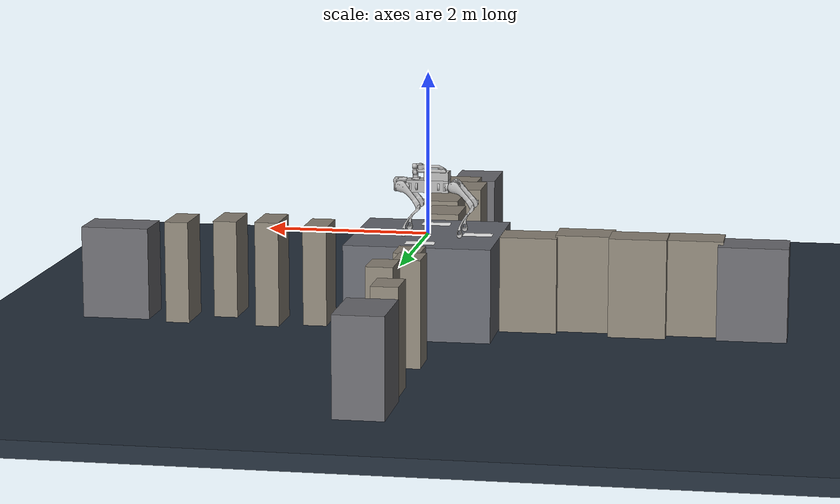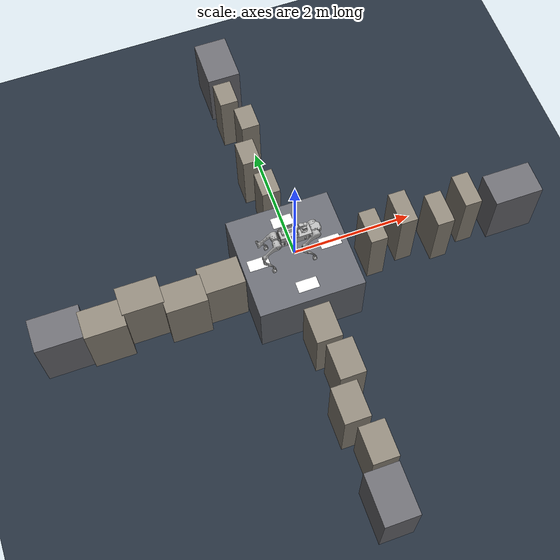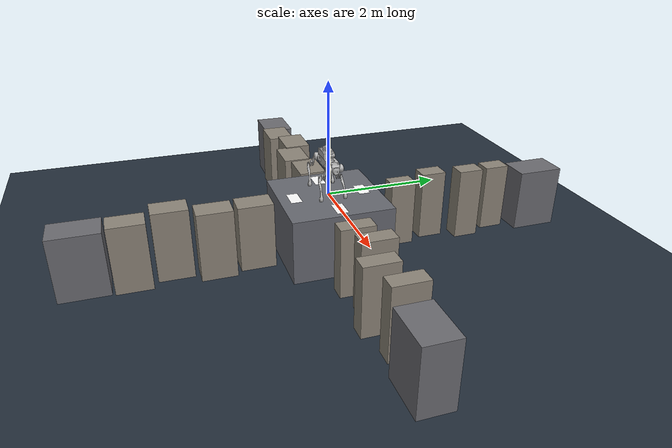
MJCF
<mujoco model="step_stone_cross_1_4_7_10">
  <include file="RM75.xml"/>
  <!-- Terrain: Cross Step Stone.
       The four branches approximate MGDP parkour levels 1 / 4 / 7 / 10
       using representative difficulties 0.1 / 0.4 / 0.7 / 0.9. -->
  <statistic center="0 0 0.12" extent="0.9" />
  <visual>
    <headlight diffuse="0.6 0.6 0.6" ambient="0.3 0.3 0.3" specular="0 0 0" />
    <rgba haze="0.15 0.25 0.35 1" />
    <global azimuth="-130" elevation="-20" />
  </visual>
  <asset>
    <texture type="skybox" builtin="gradient" rgb1="0.3 0.5 0.7" rgb2="0 0 0" width="512" height="3072" />
    <texture type="2d" name="groundplane" builtin="checker" mark="edge" rgb1="0.18 0.22 0.28" rgb2="0.10 0.14 0.18" markrgb="0.8 0.8 0.8" width="300" height="300" />
    <material name="groundplane" texture="groundplane" texuniform="true" texrepeat="5 5" reflectance="0.0" />
    <texture name="tex_label_1" type="2d" file="./imgs/label_1.png" />
    <material name="mat_label_1" texture="tex_label_1" specular="0" shininess="0" emission="1" texrepeat="1 1" rgba="1 1 1 1" />
    <texture name="tex_label_7" type="2d" file="./imgs/label_7.png" />
    <material name="mat_label_7" texture="tex_label_7" specular="0" shininess="0" emission="1" texrepeat="1 1" rgba="1 1 1 1" />
    <texture name="tex_label_10" type="2d" file="./imgs/label_10.png" />
    <material name="mat_label_10" texture="tex_label_10" specular="0" shininess="0" emission="1" texrepeat="1 1" rgba="1 1 1 1" />
    <texture name="tex_label_4" type="2d" file="./imgs/label_4.png" />
    <material name="mat_label_4" texture="tex_label_4" specular="0" shininess="0" emission="1" texrepeat="1 1" rgba="1 1 1 1" />
  </asset>
  <worldbody>
    <light pos="0 0 1.5" dir="0 0 -1" directional="true" />

    <geom name="pit_floor" pos="0 0 -1.25" size="20 20 0.10" type="box" material="groundplane" />
    <geom name="hub" pos="0 0 -0.60" type="box" size="0.90 0.90 0.60" rgba="0.40 0.41 0.44 1" />

    <!-- neg_x direction, level 1, difficulty=0.1, step_stone -->
    <geom name="neg_x_stone_1" pos="-1.27 0 -0.5864" type="box" size="0.35 0.245 0.6136" rgba="0.55 0.52 0.47 1" />
    <geom name="neg_x_stone_2" pos="-1.94 -0.12 -0.57552" type="box" size="0.35 0.245 0.62448" rgba="0.55 0.52 0.47 1" />
    <geom name="neg_x_stone_3" pos="-2.61 0.08 -0.566" type="box" size="0.35 0.245 0.634" rgba="0.55 0.52 0.47 1" />
    <geom name="neg_x_stone_4" pos="-3.28 -0.1 -0.5813" type="box" size="0.35 0.245 0.6187" rgba="0.55 0.52 0.47 1" />
    <geom name="neg_x_landing" pos="-3.995 0 -0.6" type="box" size="0.425 0.29 0.6" rgba="0.42 0.42 0.44 1" />
    <geom name="neg_x_label" pos="-0.62 0 0.002" type="box" size="0.18 0.10 0.0001" contype="0" conaffinity="0" group="1" material="mat_label_1" rgba="1 1 1 1" />

    <!-- pos_y direction, level 7, difficulty=0.7, step_stone -->
    <geom name="pos_y_stone_1" pos="0 1.3775 -0.5648" type="box" size="0.15925 0.2275 0.6352" rgba="0.55 0.52 0.47 1" />
    <geom name="pos_y_stone_2" pos="-0.12 2.0325 -0.53664" type="box" size="0.15925 0.2275 0.66336" rgba="0.55 0.52 0.47 1" />
    <geom name="pos_y_stone_3" pos="0.08 2.6875 -0.512" type="box" size="0.15925 0.2275 0.688" rgba="0.55 0.52 0.47 1" />
    <geom name="pos_y_stone_4" pos="-0.1 3.3425 -0.5516" type="box" size="0.15925 0.2275 0.6484" rgba="0.55 0.52 0.47 1" />
    <geom name="pos_y_landing" pos="0 4.165 -0.6" type="box" size="0.29 0.425 0.6" rgba="0.42 0.42 0.44 1" />
    <geom name="pos_y_label" pos="0 0.62 0.002" type="box" size="0.10 0.18 0.0001" quat="0.7071067811865476 0 0 0.7071067811865475" contype="0" conaffinity="0" group="1" material="mat_label_7" rgba="1 1 1 1" />

    <!-- pos_x direction, level 10, difficulty=0.9, step_stone -->
    <geom name="pos_x_stone_1" pos="1.3775 0 -0.5576" type="box" size="0.1475 0.30 0.6424" rgba="0.55 0.52 0.47 1" />
    <geom name="pos_x_stone_2" pos="1.9525 0.12 -0.52368" type="box" size="0.1475 0.30 0.67632" rgba="0.55 0.52 0.47 1" />
    <geom name="pos_x_stone_3" pos="2.5275 -0.08 -0.494" type="box" size="0.1475 0.3014 0.606" rgba="0.55 0.52 0.47 1" />
    <geom name="pos_x_stone_4" pos="3.1025 0.1 -0.5417" type="box" size="0.1475 0.30 0.6583" rgba="0.55 0.52 0.47 1" />
    <geom name="pos_x_landing" pos="3.925 0 -0.6" type="box" size="0.425 0.29 0.6" rgba="0.42 0.42 0.44 1" />
    <geom name="pos_x_label" pos="0.62 0 0.002" type="box" size="0.18 0.10 0.0001" contype="0" conaffinity="0" group="1" material="mat_label_10" rgba="1 1 1 1" />

    <!-- neg_y direction, level 4, difficulty=0.4, step_stone -->
    <geom name="neg_y_stone_1" pos="0 -1.34 -0.5756" type="box" size="0.217 0.31 0.6244" rgba="0.55 0.52 0.47 1" />
    <geom name="neg_y_stone_2" pos="0.12 -2.04 -0.55608" type="box" size="0.217 0.31 0.64392" rgba="0.55 0.52 0.47 1" />
    <geom name="neg_y_stone_3" pos="-0.08 -2.74 -0.539" type="box" size="0.217 0.31 0.661" rgba="0.55 0.52 0.47 1" />
    <geom name="neg_y_stone_4" pos="0.1 -3.44 -0.56645" type="box" size="0.217 0.31 0.63355" rgba="0.55 0.52 0.47 1" />
    <geom name="neg_y_landing" pos="0 -4.225 -0.6" type="box" size="0.29 0.425 0.6" rgba="0.42 0.42 0.44 1" />
    <geom name="neg_y_label" pos="0 -0.62 0.002" type="box" size="0.10 0.18 0.0001" quat="0.7071067811865476 0 0 -0.7071067811865475" contype="0" conaffinity="0" group="1" material="mat_label_4" rgba="1 1 1 1" />
  </worldbody>

  <keyframe>
    <key name="step_stone_start" qpos="0 0 0.53 1 0 0 0 0 0 0 0 0 0 0 0 0 0 0 0"/>
  </keyframe>
</mujoco>

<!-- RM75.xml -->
<mujoco model="RM75_locked_arm">
  <compiler angle="radian" meshdir="../../../RM75/meshes" convexhull="false" />
  <default>
    <joint damping="0.05" armature="0.02" frictionloss="0.02" />
    <geom condim="3" friction="0.9 0.02 0.01" />
    <default class="visual">
      <geom type="mesh" contype="0" conaffinity="0" group="2" />
    </default>
  </default>
  <asset>
    <material name="rm75_grey" rgba="0.70 0.70 0.70 1" />
    <material name="rm75_white" rgba="0.92 0.92 0.92 1" />
    <mesh name="base_link_mesh" file="base_link.STL" />
    <mesh name="FL_hip_mesh" file="FL_hip.STL" />
    <mesh name="FL_thigh_mesh" file="FL_thigh.STL" />
    <mesh name="FL_calf_mesh" file="FL_calf.STL" />
    <mesh name="FR_hip_mesh" file="FR_hip.STL" />
    <mesh name="FR_thigh_mesh" file="FR_thigh.STL" />
    <mesh name="FR_calf_mesh" file="FR_calf.STL" />
    <mesh name="RL_hip_mesh" file="RL_hip.STL" />
    <mesh name="RL_thigh_mesh" file="RL_thigh.STL" />
    <mesh name="RL_calf_mesh" file="RL_calf.STL" />
    <mesh name="RR_hip_mesh" file="RR_hip.STL" />
    <mesh name="RR_thigh_mesh" file="RR_thigh.STL" />
    <mesh name="RR_calf_mesh" file="RR_calf.STL" />
    <mesh name="base_arm_mesh" file="base_arm.STL" />
    <mesh name="link1_mesh" file="link1.STL" />
    <mesh name="link2_mesh" file="link2.STL" />
    <mesh name="link3_mesh" file="link3.STL" />
    <mesh name="link4_mesh" file="link4.STL" />
    <mesh name="link5_mesh" file="link5.STL" />
    <mesh name="link6_mesh" file="link6.STL" />
    <mesh name="frame_link_mesh" file="frame_link.STL" />
    <mesh name="head_link_mesh" file="head_link.STL" />
  </asset>
  <worldbody>
    <body name="base" pos="0 0 0.53">
      <freejoint name="root" />
      <inertial pos="-0.00021911 -8.577e-08 0.074571" mass="34.6" fullinertia="0.14102 0.56124 0.62227 -1.7646e-08 2.1243e-05 -1.5055e-07" />
      <geom name="base_link_visual" type="mesh" mesh="base_link_mesh" class="visual" material="rm75_grey" />
      <geom name="base_link_collision_0" pos="0 0 0.0695" quat="1 0 0 0" group="3" type="box" size="0.25 0.1 0.075" />
      <body name="FL_hip" pos="0.209 0.07 0.0705" quat="0.999550033749 0.0299955002025 0 0">
        <joint name="FL_hip_joint" axis="1 0 0" range="-0.93 0.81" />
        <inertial pos="0.11205 -0.016879 9.3139e-08" mass="2.9462" fullinertia="0.002834 0.0043473 0.0023086 -7.843e-06 -3.5056e-07 1.7625e-08" />
        <geom name="FL_hip_visual" type="mesh" mesh="FL_hip_mesh" class="visual" material="rm75_grey" />
        <geom name="FL_hip_collision_0" pos="0.12 -0.027 0" quat="0.707106781187 0.707106781187 0 0" group="3" type="cylinder" size="0.0535 0.0205" />
        <body name="FL_thigh" pos="0.12003 0.0485 0" quat="0.939372712847 0 0.342897807455 0">
          <joint name="FL_thigh_joint" axis="0 1 0" range="-1.64 3.99" />
          <inertial pos="-0.0059037 0.027545 -0.041279" mass="4.8086" fullinertia="0.03732 0.038716 0.0061113 0.00048305 -0.0031358 0.0034367" />
          <geom name="FL_thigh_visual" type="mesh" mesh="FL_thigh_mesh" class="visual" material="rm75_grey" />
          <geom name="FL_thigh_collision_0" pos="-0.018 0.075 -0.075" quat="0.605820156643 -0 0.795601620036 -0" group="3" type="box" size="0.0575 0.012 0.0225" />
          <geom name="FL_thigh_collision_1" pos="-0.03 0.075 -0.175" quat="0.707105482511 -0 0.707108079859 -0" group="3" type="box" size="0.085 0.012 0.019" />
          <geom name="FL_thigh_collision_2" pos="-3e-05 -0.001514 0" quat="0.707106781187 0.707106781187 0 0" group="3" type="cylinder" size="0.0535 0.0205" />
          <body name="FL_calf" pos="-0.00019314 0.065988 -0.35012" quat="0.82533561491 2.51705453774e-15 -0.564642473395 -1.66858366835e-15">
            <joint name="FL_calf_joint" axis="0 1 0" range="-1.62 0.77" />
            <inertial pos="0.022587 0.0094042 -0.20806" mass="0.5299" fullinertia="0.0066551 0.0068264 0.00033464 1.2646e-06 0.00078306 -9.4791e-06" />
            <geom name="FL_calf_visual" type="mesh" mesh="FL_calf_mesh" class="visual" material="rm75_grey" />
            <geom name="FL_calf_collision_0" pos="0.0082 0.0094 -0.04" quat="0.813791292233 0 0.581157235769 0" group="3" type="box" size="0.05 0.01225 0.009" />
            <geom name="FL_calf_collision_1" pos="0.0308 0.0094 -0.1025" quat="0.808469139581 0 0.588538571671 0" group="3" type="box" size="0.05 0.01225 0.009" />
            <geom name="FL_calf_collision_2" pos="0.0498 0.0094 -0.225" quat="0.70494551729 -0 0.709261459303 -0" group="3" type="box" size="0.075 0.01225 0.0075" />
            <geom name="FL_calf_collision_3" pos="0.0294 0.0094 -0.3125" quat="0.484416730419 0 0.874837374196 0" group="3" type="box" size="0.0325 0.014 0.0175" />
            <body name="FL_foot" pos="0 0 -0.35" quat="1 0 0 0">
              <inertial pos="0 0 0" mass="0.04" fullinertia="9.6e-06 9.6e-06 9.6e-06 0 0 0" />
              <geom name="FL_foot_collision_0" pos="0 0 0" quat="1 0 0 0" group="3" type="sphere" size="0.032" />
            </body>
          </body>
        </body>
      </body>
      <body name="FR_hip" pos="0.219 -0.07 0.0705" quat="0.999550033749 -0.0299955002025 -0 0">
        <joint name="FR_hip_joint" axis="1 0 0" range="-0.81 0.93" />
        <inertial pos="0.10205 0.016879 1.9176e-08" mass="2.9462" fullinertia="0.0028341 0.0043473 0.0023085 7.8432e-06 1.0483e-07 1.3798e-08" />
        <geom name="FR_hip_visual" type="mesh" mesh="FR_hip_mesh" class="visual" material="rm75_grey" />
        <geom name="FR_hip_collision_0" pos="0.11 0.027 0" quat="0.707106781187 0.707106781187 0 0" group="3" type="cylinder" size="0.0535 0.0205" />
        <body name="FR_thigh" pos="0.10979 -0.0485 -5.5285e-05" quat="0.939372712847 0 0.342897807455 0">
          <joint name="FR_thigh_joint" axis="0 1 0" range="-1.64 3.99" />
          <inertial pos="-0.0057859 -0.027545 -0.041242" mass="4.8081" fullinertia="0.037305 0.038702 0.0061115 -0.00048278 -0.0031376 -0.0034355" />
          <geom name="FR_thigh_visual" type="mesh" mesh="FR_thigh_mesh" class="visual" material="rm75_grey" />
          <geom name="FR_thigh_collision_0" pos="-0.018 -0.075 -0.075" quat="0.605820156643 -0 0.795601620036 -0" group="3" type="box" size="0.0575 0.012 0.0225" />
          <geom name="FR_thigh_collision_1" pos="-0.03 -0.075 -0.175" quat="0.707105482511 -0 0.707108079859 -0" group="3" type="box" size="0.085 0.012 0.019" />
          <geom name="FR_thigh_collision_2" pos="0.00021 0.001382 6e-05" quat="0.707106781187 0.707106781187 0 0" group="3" type="cylinder" size="0.0535 0.0205" />
          <body name="FR_calf" pos="-0.00034533 -0.065724 -0.34993" quat="0.82533561491 2.51705453774e-15 -0.564642473395 -1.66858366835e-15">
            <joint name="FR_calf_joint" axis="0 1 0" range="-1.62 0.77" />
            <inertial pos="0.026193 -0.0095278 -0.20763" mass="0.5299" fullinertia="0.0066258 0.0068264 0.00036386 -1.3857e-08 0.00089235 6.3149e-08" />
            <geom name="FR_calf_visual" type="mesh" mesh="FR_calf_mesh" class="visual" material="rm75_grey" />
            <geom name="FR_calf_collision_0" pos="0.0089 -0.0095 -0.04" quat="0.818787794874 0 0.57409628719 0" group="3" type="box" size="0.05 0.01225 0.009" />
            <geom name="FR_calf_collision_1" pos="0.0331 -0.0095 -0.1025" quat="0.811869045746 0 0.583839577761 0" group="3" type="box" size="0.05 0.01225 0.009" />
            <geom name="FR_calf_collision_2" pos="0.0539 -0.0095 -0.225" quat="0.709470322406 0 0.704735313167 0" group="3" type="box" size="0.075 0.01225 0.0075" />
            <geom name="FR_calf_collision_3" pos="0.0366 -0.0095 -0.3125" quat="0.5161042138 -0 0.85652579675 -0" group="3" type="box" size="0.0325 0.014 0.0175" />
            <body name="FR_foot" pos="0 0 -0.35" quat="1 0 0 0">
              <inertial pos="0 0 0" mass="0.04" fullinertia="9.6e-06 9.6e-06 9.6e-06 0 0 0" />
              <geom name="FR_foot_collision_0" pos="0 0 0" quat="1 0 0 0" group="3" type="sphere" size="0.032" />
            </body>
          </body>
        </body>
      </body>
      <body name="RL_hip" pos="-0.219 0.07 0.0705" quat="0.999550033749 0.0299955002025 0 0">
        <joint name="RL_hip_joint" axis="1 0 0" range="-0.93 0.81" />
        <inertial pos="-0.10105 -0.016879 -9.3139e-08" mass="2.9462" fullinertia="0.002834 0.0043473 0.0023086 7.843e-06 -3.5056e-07 -1.7625e-08" />
        <geom name="RL_hip_visual" type="mesh" mesh="RL_hip_mesh" class="visual" material="rm75_grey" />
        <geom name="RL_hip_collision_0" pos="-0.109 -0.027 0" quat="0.707106781187 0.707106781187 0 0" group="3" type="cylinder" size="0.0535 0.0205" />
        <body name="RL_thigh" pos="-0.10897 0.0475 0" quat="0.930507621912 0 0.366272529086 0">
          <joint name="RL_thigh_joint" axis="0 1 0" range="-1.69 3.94" />
          <inertial pos="-0.005904 0.027545 -0.041278" mass="4.8086" fullinertia="0.03732 0.038716 0.0061113 0.00048304 -0.0031358 0.0034368" />
          <geom name="RL_thigh_visual" type="mesh" mesh="RL_thigh_mesh" class="visual" material="rm75_grey" />
          <geom name="RL_thigh_collision_0" pos="-0.018 0.075 -0.075" quat="0.605820156643 -0 0.795601620036 -0" group="3" type="box" size="0.0575 0.012 0.0225" />
          <geom name="RL_thigh_collision_1" pos="-0.03 0.075 -0.175" quat="0.707105482511 -0 0.707108079859 -0" group="3" type="box" size="0.085 0.012 0.019" />
          <geom name="RL_thigh_collision_2" pos="-3e-05 -0.001514 0" quat="0.707106781187 0.707106781187 0 0" group="3" type="cylinder" size="0.0535 0.0205" />
          <body name="RL_calf" pos="-0.00019314 0.065988 -0.35012" quat="0.83232898352 2.53771464811e-15 -0.554281934752 -1.63699094958e-15">
            <joint name="RL_calf_joint" axis="0 1 0" range="-1.645 0.745" />
            <inertial pos="0.022587 0.0094042 -0.20806" mass="0.5299" fullinertia="0.0066551 0.0068264 0.00033464 1.2646e-06 0.00078306 -9.4791e-06" />
            <geom name="RL_calf_visual" type="mesh" mesh="RL_calf_mesh" class="visual" material="rm75_grey" />
            <geom name="RL_calf_collision_0" pos="0.0082 0.0094 -0.04" quat="0.813791292233 0 0.581157235769 0" group="3" type="box" size="0.05 0.01225 0.009" />
            <geom name="RL_calf_collision_1" pos="0.0308 0.0094 -0.1025" quat="0.808469139581 0 0.588538571671 0" group="3" type="box" size="0.05 0.01225 0.009" />
            <geom name="RL_calf_collision_2" pos="0.0498 0.0094 -0.225" quat="0.70494551729 -0 0.709261459303 -0" group="3" type="box" size="0.075 0.01225 0.0075" />
            <geom name="RL_calf_collision_3" pos="0.0294 0.0094 -0.3125" quat="0.484416730419 0 0.874837374196 0" group="3" type="box" size="0.0325 0.014 0.0175" />
            <body name="RL_foot" pos="0 0 -0.35" quat="1 0 0 0">
              <inertial pos="0 0 0" mass="0.04" fullinertia="9.6e-06 9.6e-06 9.6e-06 0 0 0" />
              <geom name="RL_foot_collision_0" pos="0 0 0" quat="1 0 0 0" group="3" type="sphere" size="0.032" />
            </body>
          </body>
        </body>
      </body>
      <body name="RR_hip" pos="-0.219 -0.07 0.0705" quat="0.999550033749 -0.0299955002025 -0 0">
        <joint name="RR_hip_joint" axis="1 0 0" range="-0.81 0.93" />
        <inertial pos="-0.10105 0.016879 9.3139e-08" mass="2.9462" fullinertia="0.002834 0.0043473 0.0023086 -7.843e-06 3.509e-07 -1.7625e-08" />
        <geom name="RR_hip_visual" type="mesh" mesh="RR_hip_mesh" class="visual" material="rm75_grey" />
        <geom name="RR_hip_collision_0" pos="-0.109 0.027 0" quat="0.707106781187 0.707106781187 0 0" group="3" type="cylinder" size="0.0535 0.0205" />
        <body name="RR_thigh" pos="-0.10921 -0.0475 -5.5285e-05" quat="0.930507621912 0 0.366272529086 0">
          <joint name="RR_thigh_joint" axis="0 1 0" range="-1.69 3.94" />
          <inertial pos="-0.0057859 -0.027545 -0.041242" mass="4.8081" fullinertia="0.037305 0.038702 0.0061115 -0.00048278 -0.0031376 -0.0034355" />
          <geom name="RR_thigh_visual" type="mesh" mesh="RR_thigh_mesh" class="visual" material="rm75_grey" />
          <geom name="RR_thigh_collision_0" pos="-0.018 -0.075 -0.075" quat="0.605820156643 -0 0.795601620036 -0" group="3" type="box" size="0.0575 0.012 0.0225" />
          <geom name="RR_thigh_collision_1" pos="-0.03 -0.075 -0.175" quat="0.707105482511 -0 0.707108079859 -0" group="3" type="box" size="0.085 0.012 0.019" />
          <geom name="RR_thigh_collision_2" pos="0.00021 0.001382 6e-05" quat="0.707106781187 0.707106781187 0 0" group="3" type="cylinder" size="0.0535 0.0205" />
          <body name="RR_calf" pos="-0.00034533 -0.065724 -0.34993" quat="0.83232898352 2.53771464811e-15 -0.554281934752 -1.63699094958e-15">
            <joint name="RR_calf_joint" axis="0 1 0" range="-1.645 0.745" />
            <inertial pos="0.026193 -0.0095278 -0.20763" mass="0.5299" fullinertia="0.0066258 0.0068264 0.00036386 -1.398e-08 0.00089236 6.2692e-08" />
            <geom name="RR_calf_visual" type="mesh" mesh="RR_calf_mesh" class="visual" material="rm75_grey" />
            <geom name="RR_calf_collision_0" pos="0.0089 -0.0095 -0.04" quat="0.818787794874 0 0.57409628719 0" group="3" type="box" size="0.05 0.01225 0.009" />
            <geom name="RR_calf_collision_1" pos="0.0331 -0.0095 -0.1025" quat="0.811869045746 0 0.583839577761 0" group="3" type="box" size="0.05 0.01225 0.009" />
            <geom name="RR_calf_collision_2" pos="0.0539 -0.0095 -0.225" quat="0.709470322406 0 0.704735313167 0" group="3" type="box" size="0.075 0.01225 0.0075" />
            <geom name="RR_calf_collision_3" pos="0.0366 -0.0095 -0.3125" quat="0.5161042138 -0 0.85652579675 -0" group="3" type="box" size="0.0325 0.014 0.0175" />
            <body name="RR_foot" pos="0 0 -0.35" quat="1 0 0 0">
              <inertial pos="0 0 0" mass="0.04" fullinertia="9.6e-06 9.6e-06 9.6e-06 0 0 0" />
              <geom name="RR_foot_collision_0" pos="0 0 0" quat="1 0 0 0" group="3" type="sphere" size="0.032" />
            </body>
          </body>
        </body>
      </body>
      <body name="base_arm" pos="0.16 0 0.147" quat="1 0 0 0">
        <inertial pos="-0.0057371 3.3089e-07 0.021574" mass="1.2829" fullinertia="0.0010361 0.0011971 0.0015394 6.5867e-09 -3.9093e-05 7.3288e-10" />
        <geom name="base_arm_visual" type="mesh" mesh="base_arm_mesh" class="visual" material="rm75_grey" />
        <geom name="base_arm_collision_0" pos="0 0 0.0255" quat="1 0 0 0" group="3" type="cylinder" size="0.0325 0.0255" />
        <body name="link1" pos="0 0 0.0585" quat="1 0 0 0">
          <inertial pos="-8.1037e-08 7.127e-08 0.022725" mass="1.8285" fullinertia="0.0043121 0.0010993 0.0041456 3.4622e-08 -3.2753e-09 2.5967e-09" />
          <geom name="link1_visual" type="mesh" mesh="link1_mesh" class="visual" material="rm75_grey" />
          <geom name="link1_collision_0" pos="0 0 0" quat="1 0 0 0" group="3" type="mesh" mesh="link1_mesh" />
          <body name="link2" pos="0 0 0.045" quat="1 0 0 0">
            <inertial pos="-0.11245 0.0027633 -2.7613e-06" mass="3.2348" fullinertia="0.0022244 0.04627 0.047171 0.0019632 -1.5622e-06 -2.5099e-08" />
            <geom name="link2_visual" type="mesh" mesh="link2_mesh" class="visual" material="rm75_grey" />
            <geom name="link2_collision_0" pos="0 0 0" quat="0.707106781187 0.707106781187 0 0" group="3" type="cylinder" size="0.0325 0.051" />
            <geom name="link2_collision_1" pos="-0.1625 0 0" quat="0.707106781187 0 0.707106781187 0" group="3" type="cylinder" size="0.0225 0.1175" />
            <geom name="link2_collision_2" pos="-0.35 0 0" quat="0.707106781187 0.707106781187 0 0" group="3" type="cylinder" size="0.0325 0.0255" />
            <body name="link3" pos="-0.35 0.0227 0" quat="1 0 0 0">
              <inertial pos="0.10443 -0.02836 0.037705" mass="2.2791" fullinertia="0.002487 0.02121 0.019757 -0.0003066 -0.0044269 -0.00010369" />
              <geom name="link3_visual" type="mesh" mesh="link3_mesh" class="visual" material="rm75_grey" />
              <geom name="link3_collision_0" pos="0.128 -0.0227 0.055" quat="0.707106781187 0 0.707106781187 0" group="3" type="cylinder" size="0.02 0.058" />
              <geom name="link3_collision_1" pos="0.2205 -0.0227 0.055" quat="0.5 -0.5 0.5 0.5" group="3" type="cylinder" size="0.0325 0.0295" />
              <body name="link4" pos="0.218 0.00019997 0.056998" quat="1 0 0 0">
                <inertial pos="0.056041 -0.016629 -0.0059401" mass="1.5316" fullinertia="0.00095965 0.0019329 0.0020218 0.00045143 8.6316e-05 -4.4149e-05" />
                <geom name="link4_visual" type="mesh" mesh="link4_mesh" class="visual" material="rm75_grey" />
                <geom name="link4_collision_0" pos="0.072 -0.02289997 2e-06" quat="1 0 0 0" group="3" type="cylinder" size="0.0325 0.0335" />
                <body name="link5" pos="0.072 -0.0225 0.0228" quat="1 0 0 0">
                  <inertial pos="0.020886 4.4777e-07 -0.0079004" mass="1.0574" fullinertia="0.00063912 0.00089439 0.00082434 -7.591e-09 0.00028924 6.4337e-09" />
                  <geom name="link5_visual" type="mesh" mesh="link5_mesh" class="visual" material="rm75_grey" />
                  <geom name="link5_collision_0" pos="0 0 0" quat="1 0 0 0" group="3" type="mesh" mesh="link5_mesh" />
                  <body name="link6" pos="0.0469 0 -0.0228" quat="1 0 0 0">
                    <inertial pos="0.024734 1.1095e-05 -2.6661e-05" mass="0.78415" fullinertia="0.0004075 0.00036244 0.00036313 -2.1698e-07 5.2406e-07 -3.4388e-07" />
                    <geom name="link6_visual" type="mesh" mesh="link6_mesh" class="visual" material="rm75_grey" />
                    <geom name="link6_collision_0" pos="0.0258 -0.00039997 2e-06" quat="0.707106781187 0 0.707106781187 0" group="3" type="cylinder" size="0.0325 0.0255" />
                  </body>
                </body>
              </body>
            </body>
          </body>
        </body>
      </body>
      <body name="frame_link" pos="-0.11 0 0.149" quat="1 0 0 0">
        <inertial pos="-4.1633e-17 5.5511e-17 0.034508" mass="12.999" fullinertia="0.08192 0.14951 0.20526 1.0402e-17 1.8321e-18 -1.4563e-17" />
        <geom name="frame_link_visual" type="mesh" mesh="frame_link_mesh" class="visual" material="rm75_grey" />
        <geom name="frame_link_collision_0" pos="0 0 0" quat="1 0 0 0" group="3" type="mesh" mesh="frame_link_mesh" />
      </body>
      <body name="head_link" pos="0.30205 7e-05 0.13126" quat="1 0 0 0">
        <inertial pos="0.046678 -0.00018035 -0.036525" mass="3" fullinertia="0.0063047 0.0075614 0.0082758 4.6233e-06 0.0008403 2.4641e-06" />
        <geom name="head_link_visual" type="mesh" mesh="head_link_mesh" class="visual" material="rm75_grey" />
        <geom name="head_link_collision_0" pos="0.10795 -7e-05 -0.05576" quat="1 0 0 0" group="3" type="box" size="0.02 0.06 0.07" />
        <geom name="head_link_collision_1" pos="0.045 0 0.0175" quat="1 0 0 0" group="3" type="box" size="0.055 0.045 0.012" />
      </body>
    </body>
  </worldbody>
  <actuator>
    <motor name="FL_hip_joint_motor" joint="FL_hip_joint" ctrllimited="true" ctrlrange="-200 200" />
    <motor name="FL_thigh_joint_motor" joint="FL_thigh_joint" ctrllimited="true" ctrlrange="-200 200" />
    <motor name="FL_calf_joint_motor" joint="FL_calf_joint" ctrllimited="true" ctrlrange="-320 320" />
    <motor name="FR_hip_joint_motor" joint="FR_hip_joint" ctrllimited="true" ctrlrange="-200 200" />
    <motor name="FR_thigh_joint_motor" joint="FR_thigh_joint" ctrllimited="true" ctrlrange="-200 200" />
    <motor name="FR_calf_joint_motor" joint="FR_calf_joint" ctrllimited="true" ctrlrange="-320 320" />
    <motor name="RL_hip_joint_motor" joint="RL_hip_joint" ctrllimited="true" ctrlrange="-200 200" />
    <motor name="RL_thigh_joint_motor" joint="RL_thigh_joint" ctrllimited="true" ctrlrange="-200 200" />
    <motor name="RL_calf_joint_motor" joint="RL_calf_joint" ctrllimited="true" ctrlrange="-320 320" />
    <motor name="RR_hip_joint_motor" joint="RR_hip_joint" ctrllimited="true" ctrlrange="-200 200" />
    <motor name="RR_thigh_joint_motor" joint="RR_thigh_joint" ctrllimited="true" ctrlrange="-200 200" />
    <motor name="RR_calf_joint_motor" joint="RR_calf_joint" ctrllimited="true" ctrlrange="-320 320" />
  </actuator>
</mujoco>
